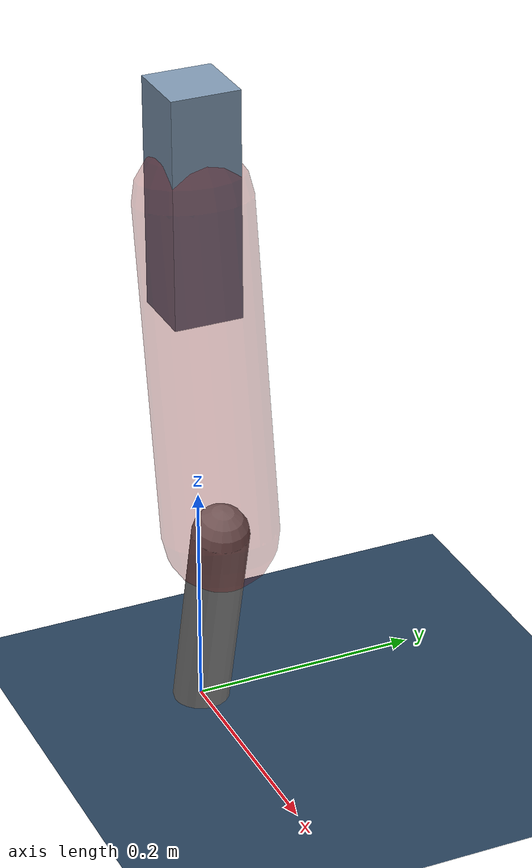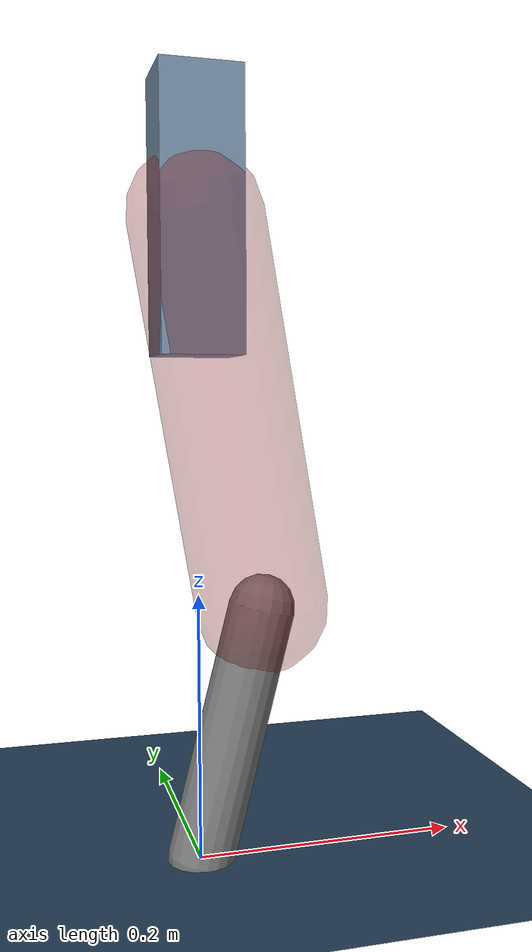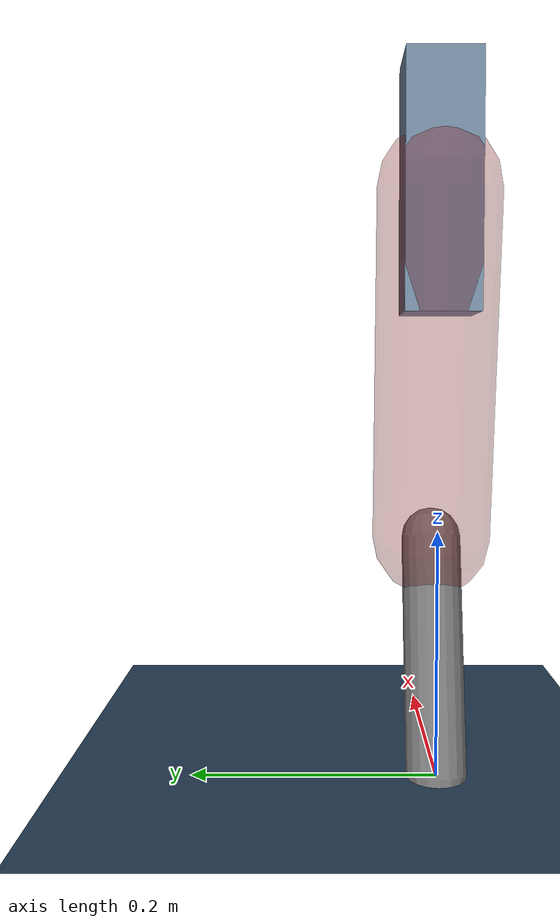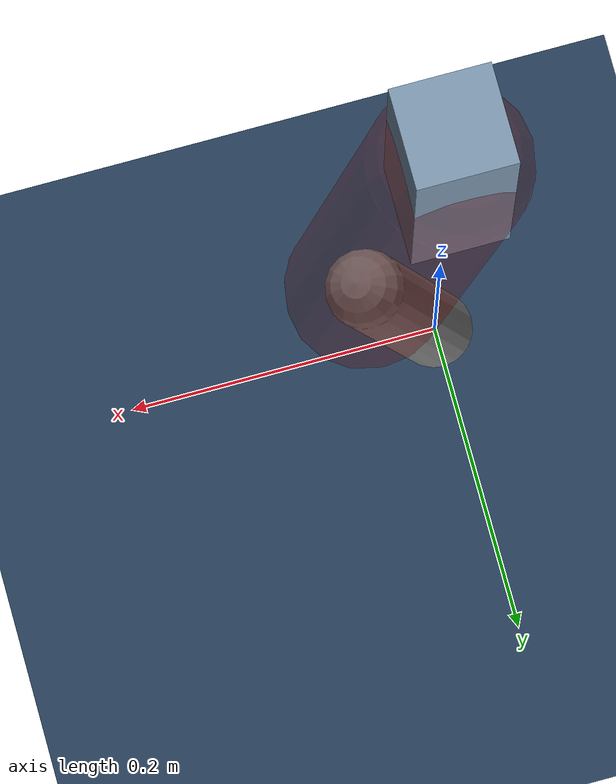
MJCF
<mujoco model="Hopper2D">
	<compiler inertiafromgeom="true" angle="radian" />
	<option timestep="0.001" integrator="implicit" cone="elliptic" solver="Newton" tolerance="1e-10" />

	<default>
		<geom contype="1" conaffinity="1" condim="3" friction="2 0.005 0.0001" solref="0.005 1" />
		<joint limited="true" damping="0.1" />
	</default>

	<asset>
		<texture name="skybox" type="skybox" builtin="gradient" rgb1=".4 .6 .8" rgb2="0 0 0" width="800" height="800" />
		<texture name="grid" type="2d" builtin="checker" rgb1=".1 .2 .3" rgb2=".2 .3 .4" width="300" height="300" mark="edge" markrgb=".2 .3 .4" />
		<material name="ground" texture="grid" texrepeat="1 1" texuniform="true" reflectance="0.1" />
		<material name="leg" rgba="0.5 0.6 0.7 1" />
	</asset>

	<worldbody>

		<geom name="floor" type="plane" size="5 5 0.25" material="ground" />

		<light directional="false" diffuse="0.8 0.8 0.8" specular="0.3 0.3 0.3" pos="0 0 2" dir="0 0 -1" />
		<light mode="targetbodycom" target="base" directional="false" diffuse="0.8 0.8 0.8" specular="0.3 0.3 0.3" pos="0 0 2" dir="0 0 -1" />

		<camera name="fixed" pos="0 -2 1" xyaxes="1 0 0 0 0 1" />
		<camera name="tracking" mode="trackcom" pos="0 -3 1" />

		<body name="root" pos="0 0 0.4754799449869236">
			<joint name="slide_x" type="slide" axis="1 0 0" range="-100 100" />
			<joint name="slide_z" type="slide" axis="0 0 1" range="0 10" />

			<body name="base" pos="0 0 0">
				<geom name="torso" type="box" size="0.03 0.03 0.1" mass="1.932" material="leg" />

				<body name="link1" pos="0 0 0" euler="0 1.4048566087159047 0">
					<joint type="hinge" axis="0 -1 0" pos="0 0 0" name="hinge1" limited="true" range="-3.14 3.14" stiffness="0" damping="0.1" />
					<geom name="thigh" type="capsule" fromto="0 0 0 0.2906469011541356 0 0" size="0.05" rgba="0.5 0 0 0.3" mass="0.9635466331161662" />

					<body name="link2" pos="0.2906469011541356 0 0" euler="0 0.4149140875848936 0">
						<joint type="hinge" axis="0 -1 0" pos="0 0 0" name="hinge2" limited="true" range="-3.14 3.14" stiffness="0" damping="0.1" />
						<geom name="shank" type="capsule" fromto="0 0 0 0.194833043832788 0 0" size="0.025" mass="0.39654973944950916" />

					</body>
				</body>
			</body>
		</body>
	</worldbody>

	<actuator>
		<motor name="torque1" joint="hinge1" ctrlrange="-56.623005066336205 56.623005066336205" ctrllimited="true" gear="1" />
		<motor name="torque2" joint="hinge2" ctrlrange="-104.3968744395911 104.3968744395911" ctrllimited="true" gear="1" />
	</actuator>
</mujoco>
